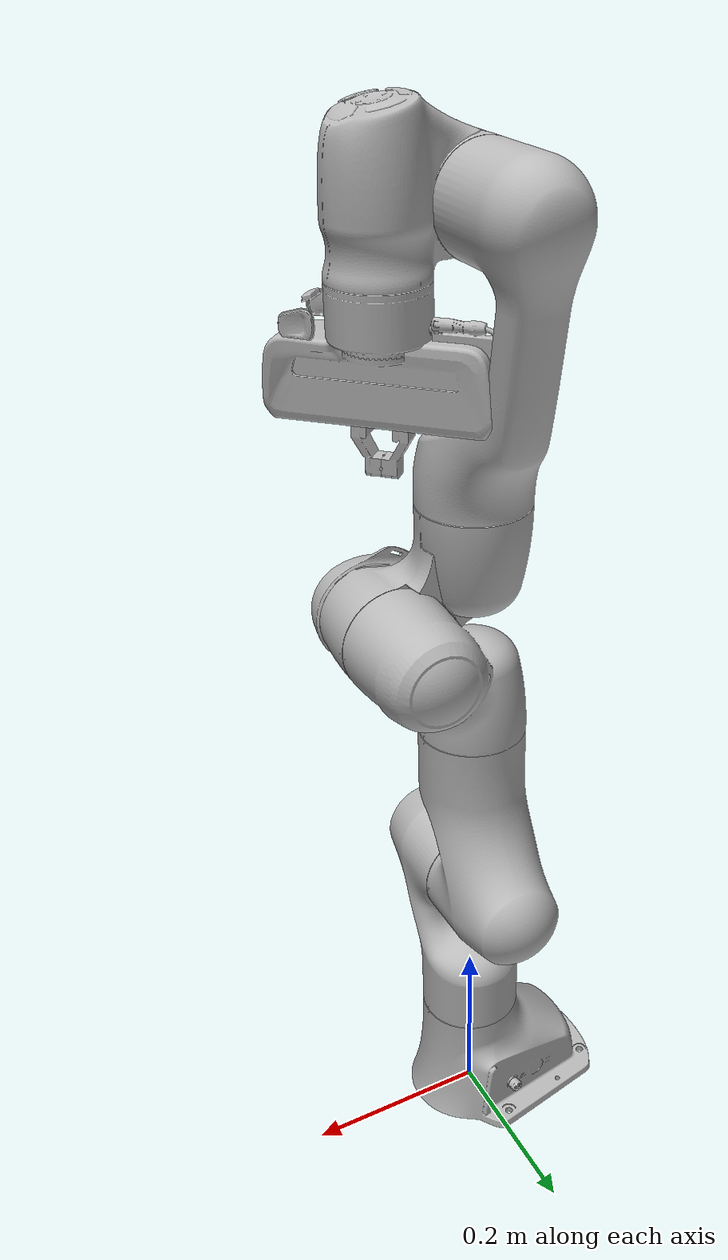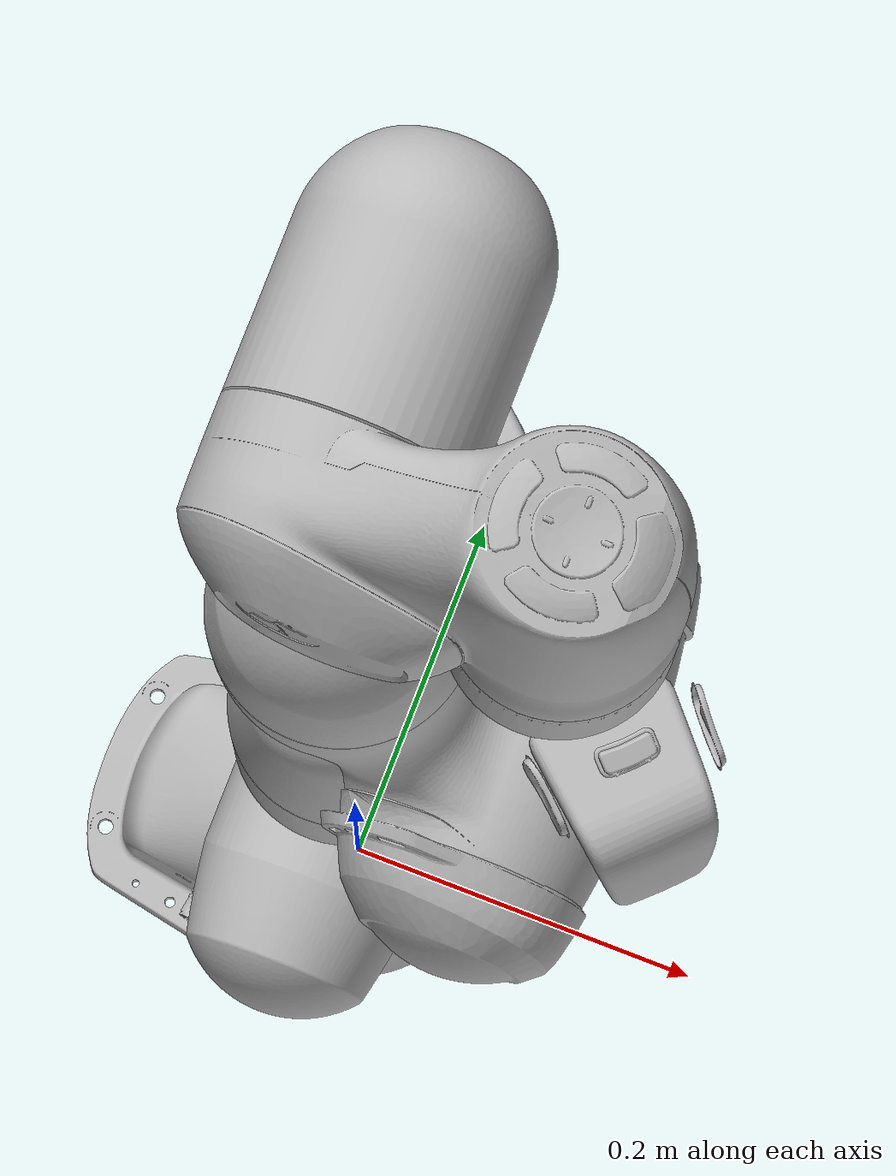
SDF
<?xml version="1.0"?>
<sdf version="1.7">
  <model name="fr3">
    <link name="fr3_link0">
      <inertial>
        <pose>-0.02919 -0.00087947 0.056603 0 0 0</pose>
        <mass>0.62977</mass>
        <inertia>
          <ixx>0.0019025</ixx>
          <ixy>-1.2262e-05</ixy>
          <ixz>-0.00028962</ixz>
          <iyy>0.0024572</iyy>
          <iyz>-2.5958e-07</iyz>
          <izz>0.0025371</izz>
        </inertia>
      </inertial>
      <visual name="fr3_link0_visual">
        <geometry>
          <mesh>
            <scale>1 1 1</scale>
            <uri>visual/link0.obj</uri>
          </mesh>
        </geometry>
      </visual>
      <collision name="fr3_link0_collision">
        <geometry>
          <mesh>
            <uri>collision/link0.obj</uri>
          </mesh>
        </geometry>
      </collision>
    </link>

    <joint name="fr3_joint1" type="revolute">
      <child>fr3_link1</child>
      <parent>fr3_link0</parent>
      <pose relative_to="fr3_link0">0 0 0.333 0 0 0</pose>
      <axis>
        <xyz>0 0 1</xyz>
        <limit>
          <lower>-2.3093</lower>
          <upper>2.3093 </upper>
          <effort>87.0</effort>
          <velocity>2.0</velocity>
        </limit>
        <dynamics>
          <damping>0.0628</damping>  <!-- # from [1] -->
          <friction>0.2549</friction>
          <spring_reference>0</spring_reference>
          <spring_stiffness>0</spring_stiffness>
        </dynamics>
      </axis>
    </joint>

    <link name="fr3_link1">
      <pose relative_to="fr3_joint1">0 0 0 0 0 0</pose>
      <inertial>
        <pose>1.1399e-05 -0.031266 -0.069373 0 0 0</pose>
        <mass>4.9707</mass>
        <inertia>
          <ixx>0.02944</ixx>
          <ixy>7.0888e-07</ixy>
          <ixz>1.9159e-06</ixz>
          <iyy>0.025499</iyy>
          <iyz>0.0057465</iyz>
          <izz>0.011896</izz>
        </inertia>
      </inertial>
      <visual name="fr3_link1_visual">
        <geometry>
          <mesh>
            <scale>1 1 1</scale>
            <uri>visual/link1.obj</uri>
          </mesh>
        </geometry>
      </visual>
      <collision name="fr3_link1_collision">
        <geometry>
          <mesh>
            <uri>collision/link1.obj</uri>
          </mesh>
        </geometry>
      </collision>
    </link>

    <joint name="fr3_joint2" type="revolute">
      <child>fr3_link2</child>
      <parent>fr3_link1</parent>
      <pose relative_to="fr3_link1">0 0 0 -1.57079632679 0 0</pose>
      <axis>
        <xyz>0 0 1</xyz>
        <limit>
          <lower>-1.5133</lower>
          <upper>1.5133</upper>
          <effort>87.0</effort>
          <velocity>1.0</velocity>
        </limit>
        <dynamics>
          <damping>0.2088</damping>  <!-- # from [1] -->
          <friction>0.1413</friction>
          <spring_reference>0</spring_reference>
          <spring_stiffness>0</spring_stiffness>
        </dynamics>
      </axis>
    </joint>

    <link name="fr3_link2">
      <pose relative_to="fr3_joint2">0 0 0 0 0 0</pose>
      <inertial>
        <pose>-1.3177e-05 -0.070322 0.031178 0 0 0</pose>
        <mass>0.64693</mass>
        <inertia>
          <ixx>0.0038791</ixx>
          <ixy>-4.3728e-07</ixy>
          <ixz>-1.5169e-07</ixz>
          <iyy>0.0015493</iyy>
          <iyz>-0.00075277</iyz>
          <izz>0.0033662</izz>
        </inertia>
      </inertial>
      <visual name="fr3_link2_visual">
        <geometry>
          <mesh>
            <scale>1 1 1</scale>
            <uri>visual/link2.obj</uri>
          </mesh>
        </geometry>
      </visual>
      <collision name="fr3_link2_collision">
        <geometry>
          <mesh>
            <uri>collision/link2.obj</uri>
          </mesh>
        </geometry>
      </collision>
    </link>

    <joint name="fr3_joint3" type="revolute">
      <child>fr3_link3</child>
      <parent>fr3_link2</parent>
      <pose relative_to="fr3_link2">0 -0.316 0 1.57079632679 0 0</pose>
      <axis>
        <xyz>0 0 1</xyz>
        <limit>
          <lower>-2.4937</lower>
          <upper>2.4937</upper>
          <effort>87.0</effort>
          <velocity>1.50</velocity>
        </limit>
        <dynamics>
          <damping>0.0361</damping>  <!-- # from [1] -->
          <friction>0.1879</friction>
          <spring_reference>0</spring_reference>
          <spring_stiffness>0</spring_stiffness>
        </dynamics>
      </axis>
    </joint>

    <link name="fr3_link3">
      <pose relative_to="fr3_joint3">0 0 0 0 0 0</pose>
      <inertial>
        <pose>0.044348 0.024928 -0.03813 0 0 0</pose>
        <mass>3.2286</mass>
        <inertia>
          <ixx>0.010271</ixx>
          <ixy>-0.0019999</ixy>
          <ixz>-0.0034172</ixz>
          <iyy>0.012391</iyy>
          <iyz>-0.0018463</iyz>
          <izz>0.010383</izz>
        </inertia>
      </inertial>
      <visual name="fr3_link3_visual">
        <geometry>
          <mesh>
            <scale>1 1 1</scale>
            <uri>visual/link3.obj</uri>
          </mesh>
        </geometry>
      </visual>
      <collision name="fr3_link3_collision">
        <geometry>
          <mesh>
            <uri>collision/link3.obj</uri>
          </mesh>
        </geometry>
      </collision>
    </link>

    <joint name="fr3_joint4" type="revolute">
      <child>fr3_link4</child>
      <parent>fr3_link3</parent>
      <pose relative_to="fr3_link3">0.0825 0 0 1.57079632679 0 0</pose>
      <axis>
        <xyz>0 0 1</xyz>
        <limit>
          <lower>-2.7478</lower>
          <upper>-0.4461</upper>
          <effort>87.0</effort>
          <velocity>1.25</velocity>
        </limit>
        <dynamics>
          <damping>0.2174</damping>  <!-- # from [1] -->
          <friction>0.3625</friction>
          <spring_reference>0</spring_reference>
          <spring_stiffness>0</spring_stiffness>
        </dynamics>
      </axis>
    </joint>

    <link name="fr3_link4">
      <pose relative_to="fr3_joint4">0 0 0 0 0 0</pose>
      <inertial>
        <pose>-0.03855 0.039526 0.024716 0 0 0</pose>
        <mass>3.5879</mass>
        <inertia>
          <ixx>0.011671</ixx>
          <ixy>0.0038707</ixy>
          <ixz>-0.0022215</ixz>
          <iyy>0.011552</iyy>
          <iyz>0.0020927</iyz>
          <izz>0.014033</izz>
        </inertia>
      </inertial>
      <visual name="fr3_link4_visual">
        <geometry>
          <mesh>
            <scale>1 1 1</scale>
            <uri>visual/link4.obj</uri>
          </mesh>
        </geometry>
      </visual>
      <collision name="fr3_link4_collision">
        <geometry>
          <mesh>
            <uri>collision/link4.obj</uri>
          </mesh>
        </geometry>
      </collision>
    </link>

    <joint name="fr3_joint5" type="revolute">
      <child>fr3_link5</child>
      <parent>fr3_link4</parent>
      <pose relative_to="fr3_link4">-0.0825 0.384 0 -1.57079632679 0 0</pose>
      <axis>
        <xyz>0 0 1</xyz>
        <limit>
          <lower>-2.4800</lower>
          <upper>2.4800</upper>
          <effort>12.0</effort>
          <velocity>3.0</velocity>
        </limit>
        <dynamics>
          <damping>0.1021</damping>  <!-- # from [1] -->
          <friction>0.2728</friction>
          <spring_reference>0</spring_reference>
          <spring_stiffness>0</spring_stiffness>
        </dynamics>
      </axis>
    </joint>

    <link name="fr3_link5">
      <pose relative_to="fr3_joint5">0 0 0 0 0 0</pose>
      <inertial>
        <pose>-6.3678e-05 0.038412 -0.10997 0 0 0</pose>
        <mass>1.2259</mass>
        <inertia>
          <ixx>0.010699</ixx>
          <ixy>-3.3263e-06</ixy>
          <ixz>-1.4276e-05</ixz>
          <iyy>0.0097269</iyy>
          <iyz>-0.0021033</iyz>
          <izz>0.0027718</izz>
        </inertia>
      </inertial>
      <visual name="fr3_link5_visual">
        <geometry>
          <mesh>
            <scale>1 1 1</scale>
            <uri>visual/link5.obj</uri>
          </mesh>
        </geometry>
      </visual>
      <collision name="fr3_link5_collision">
        <geometry>
          <mesh>
            <uri>collision/link5.obj</uri>
          </mesh>
        </geometry>
      </collision>
    </link>

    <joint name="fr3_joint6" type="revolute">
      <child>fr3_link6</child>
      <parent>fr3_link5</parent>
      <pose relative_to="fr3_link5">0 0 0 1.57079632679 0 0</pose>
      <axis>
        <xyz>0 0 1</xyz>
        <limit>
          <lower>0.8521</lower>
          <upper>4.2094</upper>
          <effort>12.0</effort>
          <velocity>1.50</velocity>
        </limit>
        <dynamics>
          <damping>1.6128e-4</damping>  <!-- # from [1] -->
          <friction>0.1529</friction>
          <spring_reference>0</spring_reference>
          <spring_stiffness>0</spring_stiffness>
        </dynamics>
      </axis>
    </joint>

    <link name="fr3_link6">
      <pose relative_to="fr3_joint6">0 0 0 0 0 0</pose>
      <inertial>
        <pose>0.051002 0.0069327 0.006169 0 0 0</pose>
        <mass>1.6666</mass>
        <inertia>
          <ixx>0.0026926</ixx>
          <ixy>-0.00018935</ixy>
          <ixz>0.00034181</ixz>
          <iyy>0.004112</iyy>
          <iyz>3.3855e-05</iyz>
          <izz>0.0050102</izz>
        </inertia>
      </inertial>
      <visual name="fr3_link6_visual">
        <geometry>
          <mesh>
            <scale>1 1 1</scale>
            <uri>visual/link6.obj</uri>
          </mesh>
        </geometry>
      </visual>
      <collision name="fr3_link6_collision">
        <geometry>
          <mesh>
            <uri>collision/link6.obj</uri>
          </mesh>
        </geometry>
      </collision>
    </link>

    <joint name="fr3_joint7" type="revolute">
      <child>fr3_link7</child>
      <parent>fr3_link6</parent>
      <pose relative_to="fr3_link6">0.088 0 0 1.57079632679 0 0</pose>
      <axis>
        <xyz>0 0 1</xyz>
        <limit>
          <lower>-2.6895</lower>
          <upper>2.6895</upper>
          <effort>12.0</effort>
          <velocity>3.0</velocity>
        </limit>
        <dynamics>
          <damping>0.0632</damping>  <!-- # from [1] -->
          <friction>0.2097</friction>
          <spring_reference>0</spring_reference>
          <spring_stiffness>0</spring_stiffness>
        </dynamics>
      </axis>
    </joint>

    <link name="fr3_link7">
      <pose relative_to="fr3_joint7">0 0 0 0 0 0</pose>
      <inertial>
        <pose>0.010361 0.01036 0.079108 0 0 0</pose>
        <mass>0.73552</mass>
        <inertia>
          <ixx>0.00071284</ixx>
          <ixy>-0.00021805</ixy>
          <ixz>-2.3858e-05</ixz>
          <iyy>0.00071233</iyy>
          <iyz>-2.3938e-05</iyz>
          <izz>0.001122</izz>
        </inertia>
      </inertial>
      <visual name="fr3_link7_visual">
        <geometry>
          <mesh>
            <scale>1 1 1</scale>
            <uri>visual/link7.obj</uri>
          </mesh>
        </geometry>
      </visual>
      <collision name="fr3_link7_collision">
        <geometry>
          <mesh>
            <uri>collision/link7.obj</uri>
          </mesh>
        </geometry>
      </collision>
    </link>

    <joint name="fr3_hand_joint" type="fixed">
      <child>fr3_hand_link</child>
      <parent>fr3_link7</parent>
      <pose relative_to="fr3_link7">0 0 0.1034 0 0 0</pose>
    </joint>

    <link name="fr3_hand_link">
      <pose relative_to="fr3_hand_joint">0 0 0 0 0 -0.7853981633974484</pose>
      <inertial>
        <pose>-2.7666e-06 -0.00061547 0.02393 0 0 0</pose>
        <mass>0.73</mass>
        <inertia>
          <ixx>0.0024773</ixx>
          <ixy>-4.3259e-07</ixy>
          <ixz>9.8066e-08</ixz>
          <iyy>0.000498</iyy>
          <iyz>-4.4935e-05</iyz>
          <izz>0.0022417</izz>
        </inertia>
      </inertial>
      <visual name="fr3_hand_link_visual">
        <geometry>
          <mesh>
            <scale>1 1 1</scale>
            <uri>visual/hand.obj</uri>
          </mesh>
        </geometry>
      </visual>
      <collision name="fr3_hand_link_collision">
        <geometry>
          <mesh>
            <uri>collision/hand.obj</uri>
          </mesh>
        </geometry>
      </collision>
    </link>

    <joint name='fr3_left_finger_joint' type='prismatic'>
      <pose relative_to='fr3_hand_link'>0 0 0.0584 0 0 0</pose>
      <parent>fr3_hand_link</parent>
      <child>fr3_left_finger</child>
      <axis>
        <xyz>0 1 0</xyz>
        <limit>
          <lower>0</lower>
          <upper>0.04</upper>
          <effort>20</effort>
          <velocity>0.2</velocity>
        </limit>
        <dynamics>
          <damping>3.0</damping>
          <friction>0.4</friction>
          <spring_reference>0</spring_reference>
          <spring_stiffness>0</spring_stiffness>
        </dynamics>
      </axis>
    </joint>

    <link name="fr3_left_finger">
      <pose relative_to="fr3_left_finger_joint">0 0 0 0 0 0</pose>
        <inertial>
          <pose>-1.4235e-17 0.013887 0.02436 0 0 0</pose>
        <mass>0.015</mass>
          <inertia>
          <ixx>4.9423e-06</ixx>
          <ixy>-5.6195e-23</ixy>
          <ixz>-3.3497e-22</ixz>
          <iyy>4.7655e-06</iyy>
          <iyz>9.9792e-07</iyz>
          <izz>1.1104e-06</izz>
        </inertia>
        </inertial>
        <visual name="fr3_left_finger_visual">
          <geometry>
            <mesh>
              <scale>1 1 1</scale>
              <uri>visual/finger.obj</uri>
            </mesh>
          </geometry>
        </visual>
        <collision name="fr3_left_finger_collision">
          <geometry>
            <mesh>
              <uri>collision/finger.obj</uri>
            </mesh>
          </geometry>
        </collision>
    </link>

    <joint name='fr3_right_finger_joint' type='prismatic'>
      <pose relative_to='fr3_hand_link'>0 0 0.0584 0 0 0</pose>
      <parent>fr3_hand_link</parent>
      <child>fr3_right_finger</child>
      <axis>
        <xyz>0 -1 0</xyz>
        <limit>
          <lower>0</lower>
          <upper>0.04</upper>
          <effort>20</effort>
          <velocity>0.2</velocity>
        </limit>
        <dynamics>
          <damping>3.0</damping>
          <friction>0.4</friction>
          <spring_reference>0</spring_reference>
          <spring_stiffness>0</spring_stiffness>
        </dynamics>
      </axis>
    </joint>

    <link name="fr3_right_finger">
      <pose relative_to="fr3_right_finger_joint">0 0 0 0 0 0</pose>
        <inertial>
          <pose>-1.4235e-17 0.013887 0.02436 0 0 0</pose>
        <mass>0.015</mass>
          <inertia>
          <ixx>4.9423e-06</ixx>
          <ixy>-5.6195e-23</ixy>
          <ixz>-3.3497e-22</ixz>
          <iyy>4.7655e-06</iyy>
          <iyz>9.9792e-07</iyz>
          <izz>1.1104e-06</izz>
        </inertia>
        </inertial>
        <visual name="fr3_right_finger_visual">
          <pose>0 0 0 0 0 3.141592653589793</pose>
          <geometry>
            <mesh>
              <scale>1 1 1</scale>
              <uri>visual/finger.obj</uri>
            </mesh>
          </geometry>
        </visual>
        <collision name="fr3_right_finger_collision">
          <geometry>
            <mesh>
              <uri>collision/finger.obj</uri>
            </mesh>
          </geometry>
        </collision>
    </link>

  </model>
</sdf>
